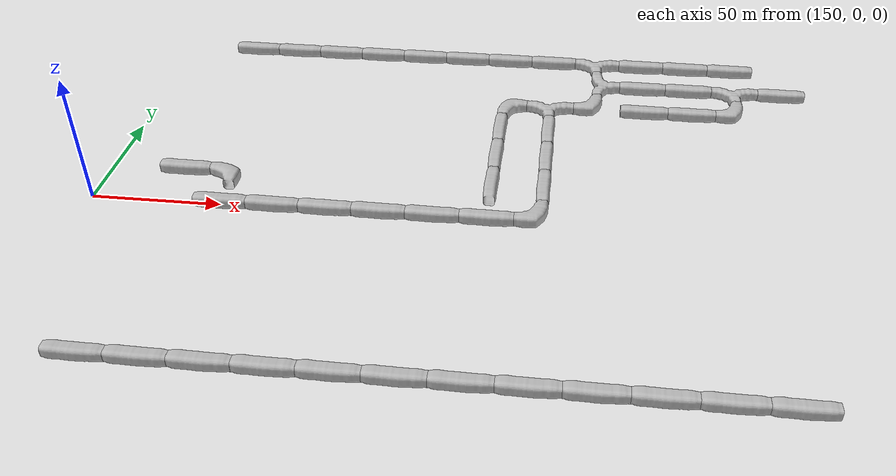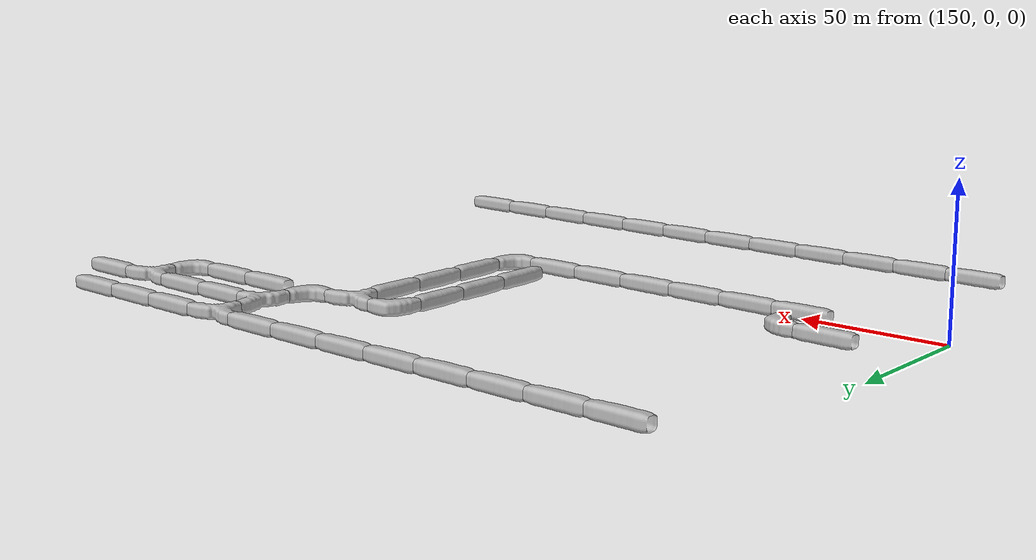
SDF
<sdf version="1.6">
 <world name="cave_8000_2">
  <include>
   <static>true</static>
   <name>cave_10_0</name>
   <pose>200 0 0 0 0 1.5707963267948966</pose>
   <uri>model://cave_straight_20m</uri>
  </include>
  <include>
   <static>true</static>
   <name>cave_11_0</name>
   <pose>220 0 0 0 0 1.5707963267948966</pose>
   <uri>model://cave_straight_20m</uri>
  </include>
  <include>
   <static>true</static>
   <name>cave_12_0</name>
   <pose>240 0 0 0 0 1.5707963267948966</pose>
   <uri>model://cave_straight_20m</uri>
  </include>
  <include>
   <static>true</static>
   <name>cave_13_0</name>
   <pose>260 0 0 0 0 1.5707963267948966</pose>
   <uri>model://cave_straight_20m</uri>
  </include>
  <include>
   <static>true</static>
   <name>cave_14_0</name>
   <pose>280 0 0 0 0 1.5707963267948966</pose>
   <uri>model://cave_straight_20m</uri>
  </include>
  <include>
   <static>true</static>
   <name>cave_15_0</name>
   <pose>300 0 0 0 0 1.5707963267948966</pose>
   <uri>model://cave_straight_20m</uri>
  </include>
  <include>
   <static>true</static>
   <name>cave_16_0</name>
   <pose>320 0 0 0 0 1.5707963267948966</pose>
   <uri>model://cave_L_20m</uri>
  </include>
  <include>
   <static>true</static>
   <name>cave_16_1</name>
   <pose>320 20 0 0 0 0.0</pose>
   <uri>model://cave_straight_20m</uri>
  </include>
  <include>
   <static>true</static>
   <name>cave_16_2</name>
   <pose>320 40 0 0 0 0.0</pose>
   <uri>model://cave_straight_20m</uri>
  </include>
  <include>
   <static>true</static>
   <name>cave_16_3</name>
   <pose>320 60 0 0 0 0.0</pose>
   <uri>model://cave_straight_20m</uri>
  </include>
  <include>
   <static>true</static>
   <name>cave_16_4</name>
   <pose>320 80 0 0 0 3.141592653589793</pose>
   <uri>model://cave_3way_20m</uri>
  </include>
  <include>
   <static>true</static>
   <name>cave_17_4</name>
   <pose>340 80 0 0 0 1.5707963267948966</pose>
   <uri>model://cave_L_20m</uri>
  </include>
  <include>
   <static>true</static>
   <name>cave_17_5</name>
   <pose>340 100 0 0 0 -1.5707963267948966</pose>
   <uri>model://cave_3way_20m</uri>
  </include>
  <include>
   <static>true</static>
   <name>cave_18_5</name>
   <pose>360 100 0 0 0 1.5707963267948966</pose>
   <uri>model://cave_straight_20m</uri>
  </include>
  <include>
   <static>true</static>
   <name>cave_19_5</name>
   <pose>380 100 0 0 0 1.5707963267948966</pose>
   <uri>model://cave_straight_20m</uri>
  </include>
  <include>
   <static>true</static>
   <name>cave_20_5</name>
   <pose>400 100 0 0 0 3.141592653589793</pose>
   <uri>model://cave_3way_20m</uri>
  </include>
  <include>
   <static>true</static>
   <name>cave_21_5</name>
   <pose>420 100 0 0 0 1.5707963267948966</pose>
   <uri>model://cave_straight_20m</uri>
  </include>
  <include>
   <static>true</static>
   <name>cave_20_4</name>
   <pose>400 80 0 0 0 1.5707963267948966</pose>
   <uri>model://cave_L_20m</uri>
  </include>
  <include>
   <static>true</static>
   <name>cave_19_4</name>
   <pose>380 80 0 0 0 1.5707963267948966</pose>
   <uri>model://cave_straight_20m</uri>
  </include>
  <include>
   <static>true</static>
   <name>cave_18_4</name>
   <pose>360 80 0 0 0 1.5707963267948966</pose>
   <uri>model://cave_straight_20m</uri>
  </include>
  <include>
   <static>true</static>
   <name>cave_17_6</name>
   <pose>340 120 0 0 0 3.141592653589793</pose>
   <uri>model://cave_3way_20m</uri>
  </include>
  <include>
   <static>true</static>
   <name>cave_18_6</name>
   <pose>360 120 0 0 0 1.5707963267948966</pose>
   <uri>model://cave_straight_20m</uri>
  </include>
  <include>
   <static>true</static>
   <name>cave_19_6</name>
   <pose>380 120 0 0 0 1.5707963267948966</pose>
   <uri>model://cave_straight_20m</uri>
  </include>
  <include>
   <static>true</static>
   <name>cave_20_6</name>
   <pose>400 120 0 0 0 1.5707963267948966</pose>
   <uri>model://cave_straight_20m</uri>
  </include>
  <include>
   <static>true</static>
   <name>cave_16_6</name>
   <pose>320 120 0 0 0 1.5707963267948966</pose>
   <uri>model://cave_straight_20m</uri>
  </include>
  <include>
   <static>true</static>
   <name>cave_15_6</name>
   <pose>300 120 0 0 0 1.5707963267948966</pose>
   <uri>model://cave_straight_20m</uri>
  </include>
  <include>
   <static>true</static>
   <name>cave_14_6</name>
   <pose>280 120 0 0 0 1.5707963267948966</pose>
   <uri>model://cave_straight_20m</uri>
  </include>
  <include>
   <static>true</static>
   <name>cave_13_6</name>
   <pose>260 120 0 0 0 1.5707963267948966</pose>
   <uri>model://cave_straight_20m</uri>
  </include>
  <include>
   <static>true</static>
   <name>cave_12_6</name>
   <pose>240 120 0 0 0 1.5707963267948966</pose>
   <uri>model://cave_straight_20m</uri>
  </include>
  <include>
   <static>true</static>
   <name>cave_11_6</name>
   <pose>220 120 0 0 0 1.5707963267948966</pose>
   <uri>model://cave_straight_20m</uri>
  </include>
  <include>
   <static>true</static>
   <name>cave_10_6</name>
   <pose>200 120 0 0 0 1.5707963267948966</pose>
   <uri>model://cave_straight_20m</uri>
  </include>
  <include>
   <static>true</static>
   <name>cave_9_6</name>
   <pose>180 120 0 0 0 1.5707963267948966</pose>
   <uri>model://cave_straight_20m</uri>
  </include>
  <include>
   <static>true</static>
   <name>cave_15_4</name>
   <pose>300 80 0 0 0 -1.5707963267948966</pose>
   <uri>model://cave_L_20m</uri>
  </include>
  <include>
   <static>true</static>
   <name>cave_15_3</name>
   <pose>300 60 0 0 0 0.0</pose>
   <uri>model://cave_straight_20m</uri>
  </include>
  <include>
   <static>true</static>
   <name>cave_15_2</name>
   <pose>300 40 0 0 0 0.0</pose>
   <uri>model://cave_straight_20m</uri>
  </include>
  <include>
   <static>true</static>
   <name>cave_15_1</name>
   <pose>300 20 0 0 0 0.0</pose>
   <uri>model://cave_straight_20m</uri>
  </include>
  <include>
   <static>true</static>
   <name>cave_9_-4</name>
   <pose>180 -80 0 0 0 1.5707963267948966</pose>
   <uri>model://cave_straight_20m</uri>
  </include>
  <include>
   <static>true</static>
   <name>cave_10_-4</name>
   <pose>200 -80 0 0 0 1.5707963267948966</pose>
   <uri>model://cave_straight_20m</uri>
  </include>
  <include>
   <static>true</static>
   <name>cave_11_-4</name>
   <pose>220 -80 0 0 0 1.5707963267948966</pose>
   <uri>model://cave_straight_20m</uri>
  </include>
  <include>
   <static>true</static>
   <name>cave_12_-4</name>
   <pose>240 -80 0 0 0 1.5707963267948966</pose>
   <uri>model://cave_straight_20m</uri>
  </include>
  <include>
   <static>true</static>
   <name>cave_13_-4</name>
   <pose>260 -80 0 0 0 1.5707963267948966</pose>
   <uri>model://cave_straight_20m</uri>
  </include>
  <include>
   <static>true</static>
   <name>cave_14_-4</name>
   <pose>280 -80 0 0 0 1.5707963267948966</pose>
   <uri>model://cave_straight_20m</uri>
  </include>
  <include>
   <static>true</static>
   <name>cave_15_-4</name>
   <pose>300 -80 0 0 0 1.5707963267948966</pose>
   <uri>model://cave_straight_20m</uri>
  </include>
  <include>
   <static>true</static>
   <name>cave_16_-4</name>
   <pose>320 -80 0 0 0 1.5707963267948966</pose>
   <uri>model://cave_straight_20m</uri>
  </include>
  <include>
   <static>true</static>
   <name>cave_17_-4</name>
   <pose>340 -80 0 0 0 1.5707963267948966</pose>
   <uri>model://cave_straight_20m</uri>
  </include>
  <include>
   <static>true</static>
   <name>cave_18_-4</name>
   <pose>360 -80 0 0 0 1.5707963267948966</pose>
   <uri>model://cave_straight_20m</uri>
  </include>
  <include>
   <static>true</static>
   <name>cave_19_-4</name>
   <pose>380 -80 0 0 0 1.5707963267948966</pose>
   <uri>model://cave_straight_20m</uri>
  </include>
  <include>
   <static>true</static>
   <name>cave_20_-4</name>
   <pose>400 -80 0 0 0 1.5707963267948966</pose>
   <uri>model://cave_straight_20m</uri>
  </include>
  <include>
   <static>true</static>
   <name>cave_9_1</name>
   <pose>180 20 0 0 0 1.5707963267948966</pose>
   <uri>model://cave_straight_20m</uri>
  </include>
  <include>
   <static>true</static>
   <name>cave_10_1</name>
   <pose>200 20 0 0 0 3.141592653589793</pose>
   <uri>model://cave_L_20m</uri>
  </include>
 </world>
</sdf>
